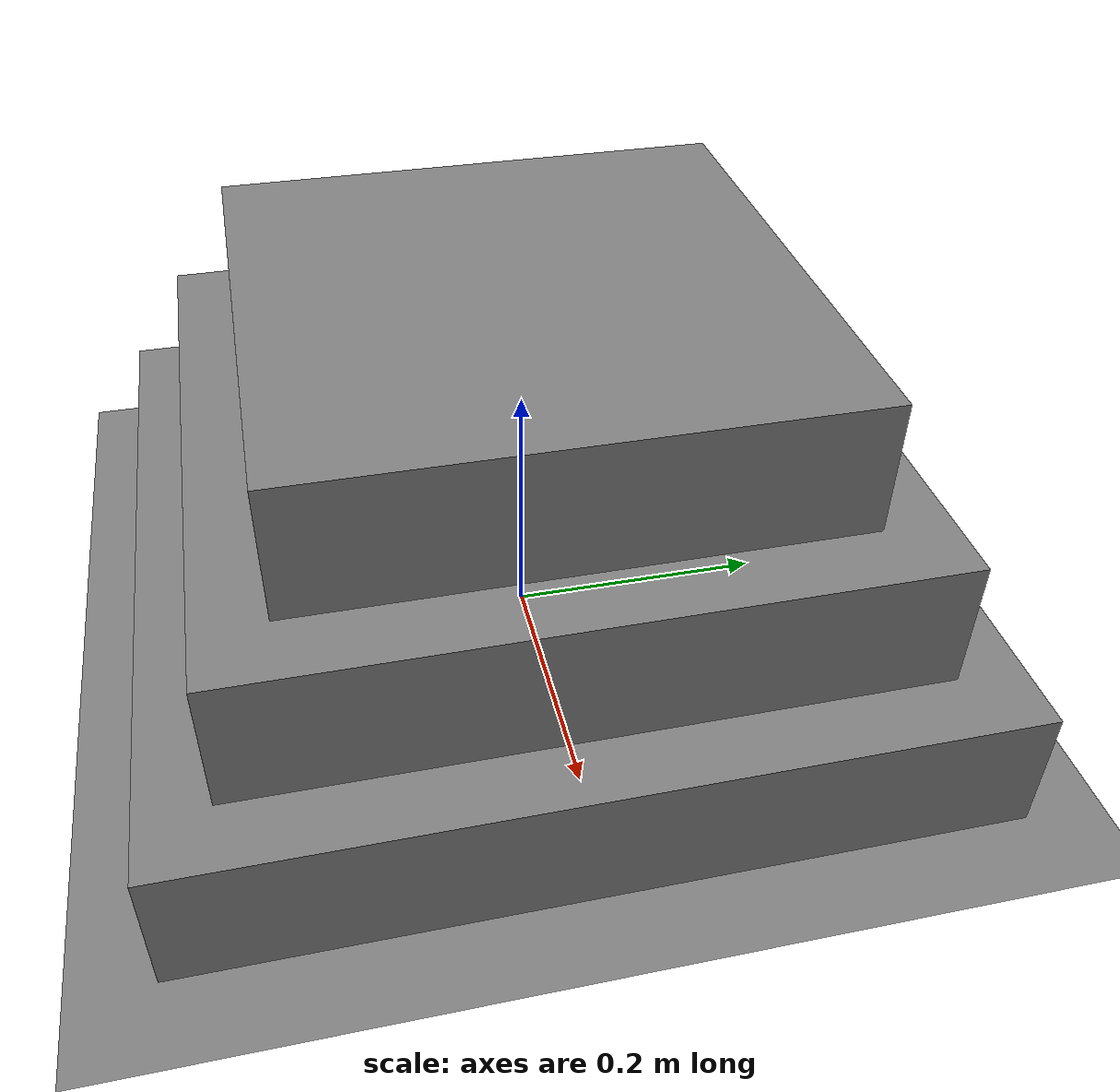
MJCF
<mujoco model="contact_stack">
  <option timestep="0.002"/>

  <worldbody>
    <geom name="floor" type="plane" size="5 5 .1" friction="0.5 0.005 0.0001"/>

    <body name="bottom" pos="0 0 .05">
      <freejoint/>
      <geom name="bottom_geom" type="box" size=".3 .3 .05" mass="1" friction="0.5 0.005 0.0001"/>
    </body>

    <body name="middle" pos="0 0 .15">
      <freejoint/>
      <geom name="middle_geom" type="box" size=".25 .25 .05" mass="1" friction="0.5 0.005 0.0001"/>
    </body>

    <body name="top" pos="0 0 .25">
      <freejoint/>
      <geom name="top_geom" type="box" size=".2 .2 .05" mass="1" friction="0.5 0.005 0.0001"/>
    </body>
  </worldbody>
</mujoco>
